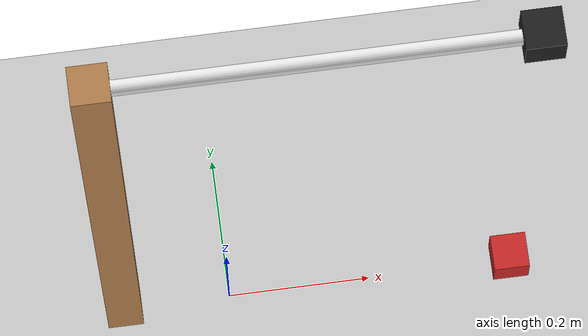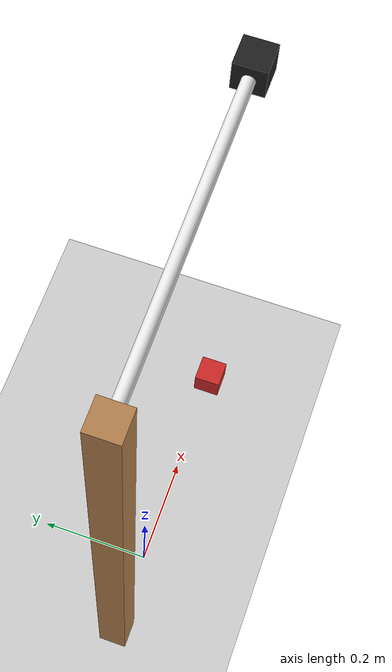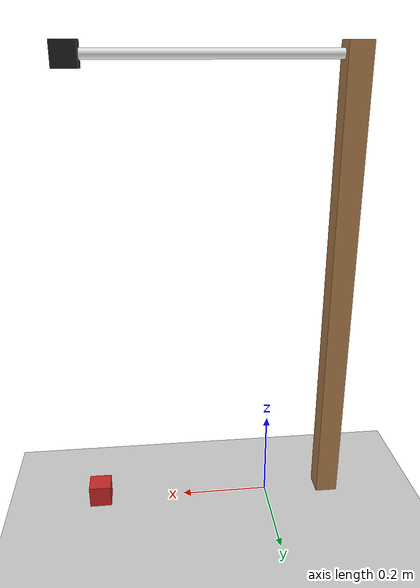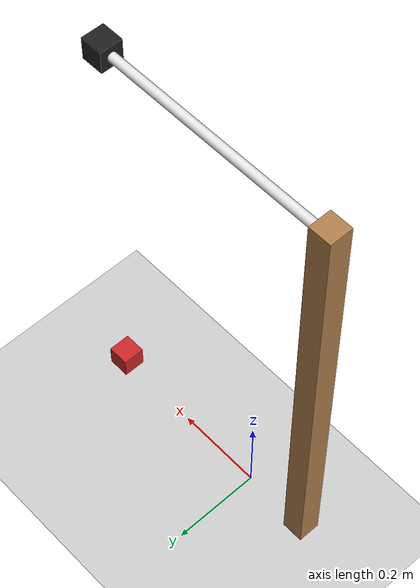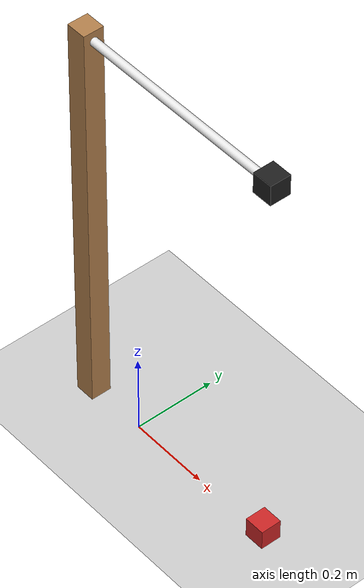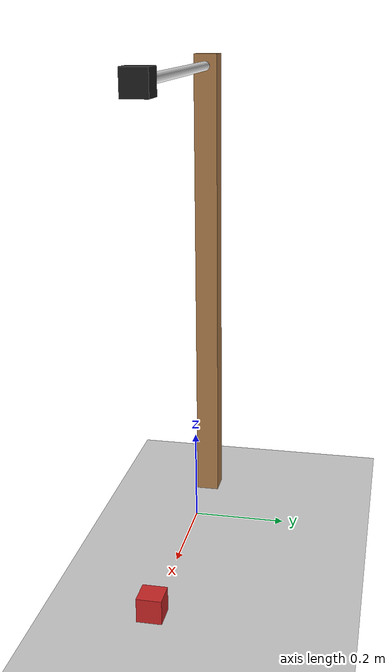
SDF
<?xml version="1.0" ?>
<sdf version="1.5">
  <world name="Box World">
    <physics type="ode">
      <ode>
        <solver><type>quick</type><iters>50</iters></solver>
      </ode>
      <real_time_update_rate>0</real_time_update_rate>
      <max_step_size>0.001</max_step_size>
    </physics>
    <model name="ground_plane">
      <static>true</static>
      <link name="ground_link">
        <collision name="ground_collision">
          <geometry><plane><normal>0 0 1</normal><size>2 2</size></plane></geometry>
          <surface>
            <contact><collide_bitmask>0xffff</collide_bitmask></contact>
            <friction><ode><mu>100</mu><mu2>50</mu2></ode></friction>
          </surface>
        </collision>
        <visual name="ground_visual">
          <cast_shadows>false</cast_shadows>
          <geometry><plane><normal>0 0 1</normal><size>2 2</size></plane></geometry>
          <material><script><name>Gazebo/Grey</name></script></material>
        </visual>
      </link>
    </model>
    <light type="directional" name="sun">
      <cast_shadows>false</cast_shadows><!--true-->
      <pose>0 0 10 0 0 0</pose>
      <diffuse>0.8 0.8 0.8 1</diffuse>
      <specular>0.2 0.2 0.2 1</specular>
      <attenuation><range>1000</range><constant>0.9</constant><linear>0.01</linear><quadratic>0.001</quadratic></attenuation>
      <direction>-0.5 0.1 -0.9</direction>
    </light>
    <model name="box">
      <pose>0.4 0 0.025 0 0 0</pose>
      <static>false</static>
      <link name="box_link">
        <inertial><mass>0.1</mass></inertial>
        <collision name="box_collision">
          <geometry><box><size>0.05 0.05 0.05</size></box></geometry>
          <surface><friction><ode><mu>100</mu><mu2>50</mu2></ode></friction></surface>
        </collision>
        <visual name="box_visual">
          <geometry><box><size>0.05 0.05 0.05</size></box></geometry>
          <material><script><name>Gazebo/Red</name></script></material>
        </visual>
      </link>
    </model>
    <model name="camera_model">
      <static>true</static>
      <joint name="camera_base_joint" type="fixed">
        <pose>-0.15 0 0 0 0 0</pose>
        <parent>ground_link</parent>
        <child>camera_stand_base_link</child>
      </joint>
      <link name="camera_stand_base_link">
        <pose>-0.15 0 0.5125 0 0 0</pose>
        <collision name="camera_stand_base_collision"><geometry><box><size>0.05 0.05 1.025</size></box></geometry></collision>
        <visual    name="camera_stand_base_visual">   <geometry><box><size>0.05 0.05 1.025</size></box></geometry>
                                                      <material><script><name>Gazebo/Wood</name></script></material></visual>
      </link>
      <joint name="camera_stand_mid_joint" type="fixed">
        <pose>-0.125 0 1 0 0 0</pose>
        <parent>camera_stand_base_link</parent>
        <child>camera_stand_end_link</child>
      </joint>
      <link name="camera_stand_end_link">
        <pose>0.125 0 1 0 1.5708 0</pose>
        <collision name="camera_stand_base_collision"><geometry><cylinder><radius>0.01</radius><length>0.5</length></cylinder></geometry></collision>
        <visual    name="camera_stand_base_visual">   <geometry><cylinder><radius>0.01</radius><length>0.5</length></cylinder></geometry>
                                                      <material><script><name>Gazebo/White</name></script></material></visual>
      </link>
      <joint name="camera_end_joint" type="fixed">
        <pose>0.375 0 1 0 0 0</pose>
        <parent>camera_stand_end_link</parent>
        <child>camera_link</child>
      </joint>
      <link name="camera_link">
        <pose>0.4 0 1 0 1.5708 0</pose>
        <collision name="camera_collision"><geometry><box><size>0.05 0.05 0.05</size></box></geometry></collision>
        <visual    name="camera_visual">   <geometry><box><size>0.05 0.05 0.05</size></box></geometry>
                                           <material><script><name>Gazebo/Black</name></script></material></visual>
        <sensor type="camera" name="camera_sensor">
          <update_rate>30.0</update_rate>
          <camera name="head">
            <horizontal_fov>1.3962634</horizontal_fov>       <!--BAYER_BGGR8-->
            <image><width>320</width><height>240</height><format>R8G8B8</format></image>
            <clip><near>0.02</near><far>5</far></clip>
          </camera>
          <plugin name="camera_controller" filename="libgazebo_ros_camera.so">
            <alwaysOn>true</alwaysOn>
            <updateRate>0.0</updateRate>
            <cameraName>camera1</cameraName>
            <imageTopicName>image_raw</imageTopicName>
            <cameraInfoTopicName>camera_info</cameraInfoTopicName>
            <frameName>camera_link</frameName>
            <distortionK1>0.0</distortionK1> <distortionT1>0.0</distortionT1>
            <distortionK2>0.0</distortionK2> <distortionT2>0.0</distortionT2>
            <distortionK3>0.0</distortionK3> <hackBaseline>0.07</hackBaseline>
          </plugin>
        </sensor>
      </link>
    </model>
  </world>
</sdf>
